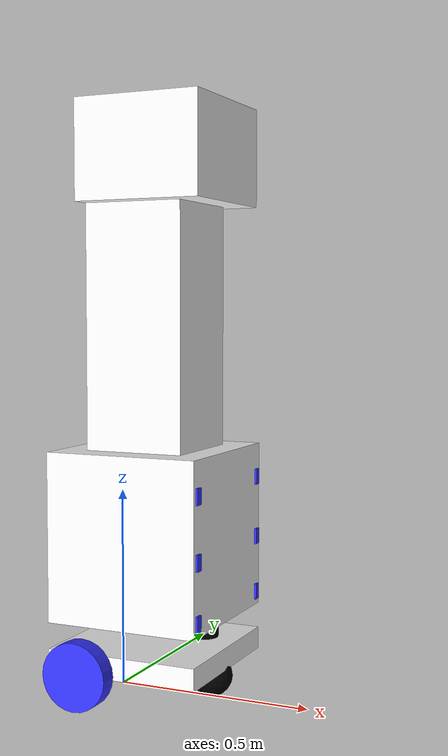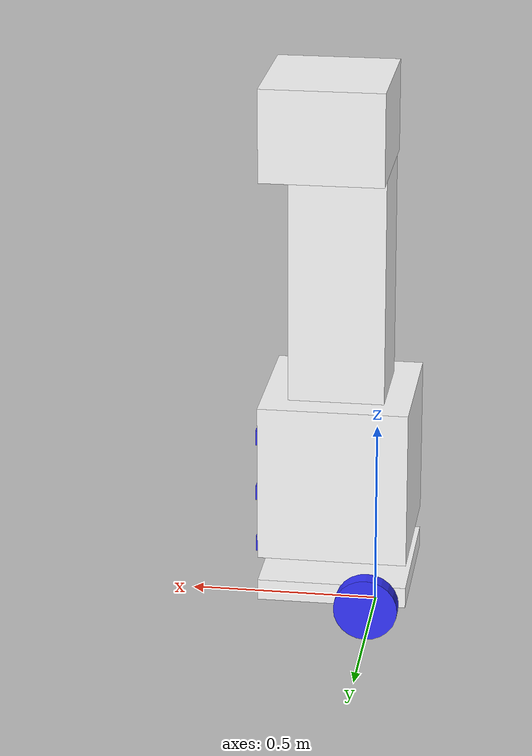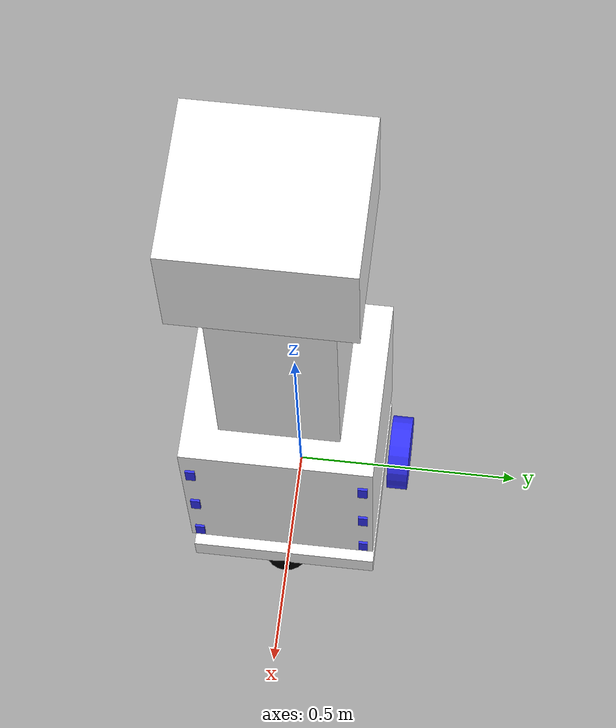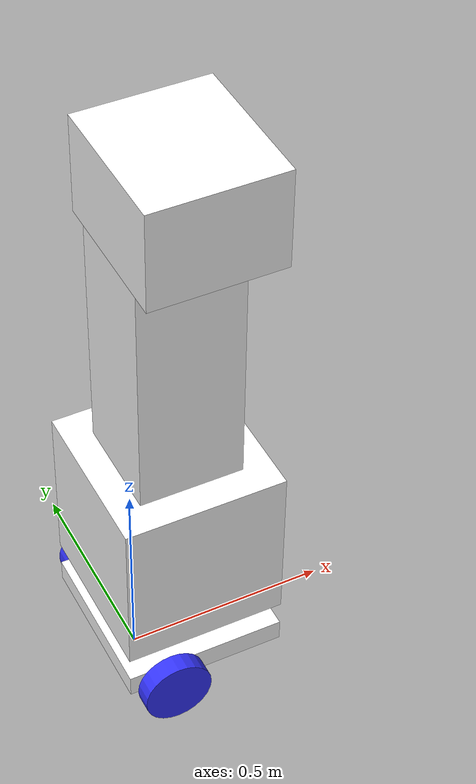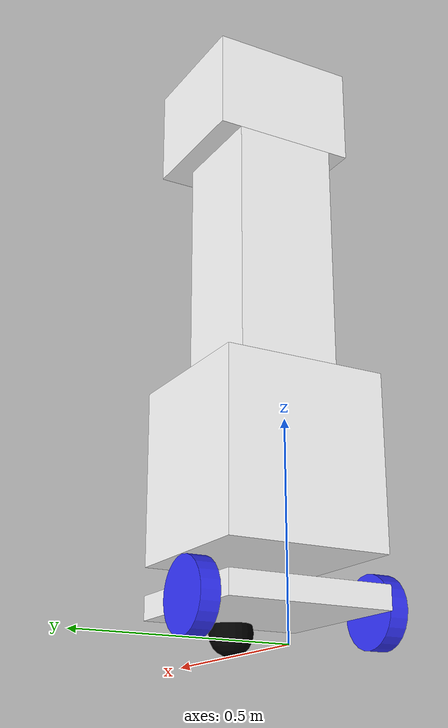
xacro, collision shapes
<?xml version="1.0"?>
<robot xmlns:xacro="http://www.ros.org/wiki/xacro" name="mobile_robot">

    <xacro:arg name="mesh_uri" default="package://objectnav_sim_gazebo/meshes"/>
    <xacro:arg name="publish_odom_tf" default="true"/>
    <xacro:arg name="lidar_samples" default="3200"/>
    <xacro:property name="mesh_uri" value="$(arg mesh_uri)"/>
    <xacro:property name="lidar_samples" value="$(arg lidar_samples)"/>

    <!-- ==================== MATERIALS & MACROS ==================== -->
    <material name="white">
        <color rgba="1 1 1 1"/>
    </material>
    <material name="orange">
        <color rgba="1 0.3 0.1 1"/>
    </material>
    <material name="blue">
        <color rgba="0.2 0.2 1 1"/>
    </material>
    <material name="black">
        <color rgba="0 0 0 1"/>
    </material>

    <xacro:macro name="inertial_box" params="mass x y z *origin">
        <inertial>
            <xacro:insert_block name="origin"/>
            <mass value="${mass}" />
            <inertia ixx="${(1/12) * mass * (y*y+z*z)}" ixy="0.0" ixz="0.0"
                     iyy="${(1/12) * mass * (x*x+z*z)}" iyz="0.0"
                     izz="${(1/12) * mass * (x*x+y*y)}" />
        </inertial>
    </xacro:macro>

    <xacro:macro name="inertial_cylinder" params="mass length radius *origin">
        <inertial>
            <xacro:insert_block name="origin"/>
            <mass value="${mass}" />
            <inertia ixx="${(1/12) * mass * (3*radius*radius + length*length)}" ixy="0.0" ixz="0.0"
                     iyy="${(1/12) * mass * (3*radius*radius + length*length)}" iyz="0.0"
                     izz="${(1/2) * mass * (radius*radius)}" />
        </inertial>
    </xacro:macro>

    <!-- Trụ đặc có trục đối xứng theo y (trục quay của bánh: joint axis = 0 1 0) -> iyy = 1/2 m r^2 -->
    <xacro:macro name="inertial_cylinder_y" params="mass length radius *origin">
        <inertial>
            <xacro:insert_block name="origin"/>
            <mass value="${mass}" />
            <inertia ixx="${(1/12) * mass * (3*radius*radius + length*length)}" ixy="0.0" ixz="0.0"
                     iyy="${(1/2) * mass * (radius*radius)}" iyz="0.0"
                     izz="${(1/12) * mass * (3*radius*radius + length*length)}" />
        </inertial>
    </xacro:macro>

    <xacro:macro name="inertial_sphere" params="mass radius *origin">
        <inertial>
            <xacro:insert_block name="origin"/>
            <mass value="${mass}" />
            <inertia ixx="${(2/5) * mass * (radius*radius)}" ixy="0.0" ixz="0.0"
                     iyy="${(2/5) * mass * (radius*radius)}" iyz="0.0"
                     izz="${(2/5) * mass * (radius*radius)}" />
        </inertial>
    </xacro:macro>

    <!-- ==================== PROPERTIES ==================== -->
    <xacro:property name="chassis_length" value="0.40"/>
    <xacro:property name="chassis_width" value="0.405"/>
    <xacro:property name="chassis_height" value="1.17"/>
    <xacro:property name="chassis_mass" value="25.0"/>

    <xacro:property name="wheel_radius" value="0.084"/>
    <xacro:property name="wheel_width" value="0.046"/>
    <xacro:property name="wheel_mass" value="2.5"/>

    <xacro:property name="wheel_offset_y" value="0.232"/>

    <xacro:property name="caster_radius" value="0.10499"/>
    <xacro:property name="caster_mass" value="0.5"/>

    <!-- ==================== LINKS & JOINTS ==================== -->
    <link name="base_link">
        <inertial>
            <mass value="0.1"/>
            <origin xyz="0 0 0" rpy="0 0 0"/>
            <inertia ixx="0.001" ixy="0.0" ixz="0.0" iyy="0.001" iyz="0.0" izz="0.001"/>
        </inertial>
    </link>

    <link name="base_footprint"/>

    <joint name="base_joint" type="fixed">
        <parent link="base_footprint"/>
        <child link="base_link"/>
        <origin xyz="0 0 ${wheel_radius}" rpy="0 0 0"/>
    </joint>

    <joint name="chassis_joint" type="fixed">
        <parent link="base_link"/>
        <child link="chassis"/>
        <origin xyz="0 0 0" rpy="0 0 0"/>
    </joint>

    <link name="chassis">
        <visual>
            <origin xyz="0 0 0" rpy="0 0 0"/>
            <geometry>
                <mesh filename="${mesh_uri}/Model_v1.stl" scale="0.001 0.001 0.001"/>
            </geometry>
            <material name="white"/>
        </visual>
        <collision name="chassis_base_low">
            <origin xyz="0.096 0 0.017" rpy="0 0 0"/>
            <geometry><box size="0.392 0.402 0.056"/></geometry>
        </collision>
        <collision name="chassis_base_high">
            <origin xyz="0.096 0 0.320" rpy="0 0 0"/>
            <geometry><box size="0.392 0.402 0.420"/></geometry>
        </collision>
        <collision name="chassis_column">
            <origin xyz="0.096 0 0.830" rpy="0 0 0"/>
            <geometry><box size="0.252 0.252 0.600"/></geometry>
        </collision>
        <collision name="chassis_head">
            <origin xyz="0.1305 0 1.2515" rpy="0 0 0"/>
            <geometry><box size="0.321 0.356 0.243"/></geometry>
        </collision>
        <xacro:inertial_box mass="${chassis_mass}" x="${chassis_length}" y="${chassis_width}" z="${chassis_height}">
            <origin xyz="0.15 0 0.3" rpy="0 0 0"/>
        </xacro:inertial_box>
    </link>

    <joint name="left_wheel_joint" type="continuous">
        <parent link="base_link"/>
        <child link="left_wheel"/>
        <origin xyz="0 ${wheel_offset_y} 0" rpy="0 0 0"/>
        <axis xyz="0 1 0"/>
    </joint>

    <link name="left_wheel">
        <visual>
            <origin xyz="0 0 0" rpy="0 0 0"/>
            <geometry>
                <mesh filename="${mesh_uri}/hoverboard_motor_assembly.stl" scale="0.001 0.001 0.001"/>
            </geometry>
            <material name="blue"/>
        </visual>
        <!-- Collision: trụ bán kính wheel_radius, trục theo y (lốp nằm ở y∈[-0.02,0.02] của mesh) -->
        <collision>
            <origin xyz="0 0 0" rpy="${pi/2} 0 0"/>
            <geometry>
                <cylinder radius="${wheel_radius}" length="${wheel_width}"/>
            </geometry>
        </collision>
        <xacro:inertial_cylinder_y mass="${wheel_mass}" length="${wheel_width}" radius="${wheel_radius}">
            <origin xyz="0 0 0" rpy="0 0 0"/>
        </xacro:inertial_cylinder_y>
    </link>

    <joint name="right_wheel_joint" type="continuous">
        <parent link="base_link"/>
        <child link="right_wheel"/>
        <origin xyz="0 -${wheel_offset_y} 0" rpy="0 0 3.14159"/>
        <axis xyz="0 -1 0"/>
    </joint>

    <link name="right_wheel">
        <visual>
            <origin xyz="0 0 0" rpy="0 0 0"/>
            <geometry>
                <mesh filename="${mesh_uri}/hoverboard_motor_assembly.stl" scale="0.001 0.001 0.001"/>
            </geometry>
            <material name="blue"/>
        </visual>
        <!-- Collision: trụ bán kính wheel_radius, trục theo y (lốp nằm ở y∈[-0.02,0.02] của mesh) -->
        <collision>
            <origin xyz="0 0 0" rpy="${pi/2} 0 0"/>
            <geometry>
                <cylinder radius="${wheel_radius}" length="${wheel_width}"/>
            </geometry>
        </collision>
        <xacro:inertial_cylinder_y mass="${wheel_mass}" length="${wheel_width}" radius="${wheel_radius}">
            <origin xyz="0 0 0" rpy="0 0 0"/>
        </xacro:inertial_cylinder_y>
    </link>

    <joint name="caster_wheel_joint" type="fixed">
        <parent link="chassis"/>
        <child link="caster_wheel"/>
        <origin xyz="0.248 0 ${caster_radius - wheel_radius}" rpy="0 0 0"/>
    </joint>

    <link name="caster_wheel">
        <visual>
            <origin xyz="0 0 0" rpy="0 0 0"/>
            <geometry>
                <mesh filename="${mesh_uri}/caster_wheel.stl" scale="0.01 0.01 0.01"/>
            </geometry>
            <material name="black"/>
        </visual>
        <collision>
            <origin xyz="0 0 ${-(caster_radius/2)}" rpy="0 0 0"/>
            <geometry>
                <sphere radius="${caster_radius/2}"/>
            </geometry>
        </collision>
        <xacro:inertial_sphere mass="${caster_mass}" radius="${caster_radius}">
            <origin xyz="0 0 0" rpy="0 0 0"/>
        </xacro:inertial_sphere>
    </link>

    <joint name="laser_joint" type="fixed">
        <parent link="chassis"/>
        <child link="laser_frame"/>
        <origin xyz="0.225 0 0.085" rpy="0 0 3.14159"/>
    </joint>

    <link name="laser_frame">
        <visual>
            <origin xyz="0 0 0" rpy="0 0 3.14159"/>
            <geometry>
                <mesh filename="${mesh_uri}/RPLiDAR_s2.stl" scale="0.001 0.001 0.001"/>
            </geometry>
            <material name="black"/>
        </visual>
        <collision>
            <origin xyz="0 0 0" rpy="0 0 3.14159"/>
            <geometry>
                <cylinder length="0.04" radius="0.038"/>
            </geometry>
        </collision>
        <xacro:inertial_cylinder mass="0.1" length="0.04" radius="0.038">
            <origin xyz="0 0 0" rpy="0 0 0"/>
        </xacro:inertial_cylinder>
    </link>

    <joint name="imu_joint" type="fixed">
        <parent link="chassis"/>
        <child link="imu_link"/>
        <origin xyz="0 0 ${chassis_height/4 - 0.04}" rpy="0 0 0"/>
    </joint>

    <link name="imu_link">
        <visual>
            <geometry>
                <box size="0.02 0.02 0.01"/>
            </geometry>
            <material name="blue"/> </visual>

        <collision>
            <geometry>
                <box size="0.02 0.02 0.01"/>
            </geometry>
        </collision>

        <xacro:inertial_box mass="0.01" x="0.02" y="0.02" z="0.01">
            <origin xyz="0 0 0" rpy="0 0 0"/>
        </xacro:inertial_box>
    </link>

    <xacro:macro name="ultrasonic_link" params="name">
        <link name="${name}_link">
            <visual>
                <geometry><box size="0.015 0.02 0.04"/></geometry>
                <material name="blue"/>
            </visual>
            <collision>
                <geometry><box size="0.015 0.02 0.04"/></geometry>
            </collision>
            <xacro:inertial_box mass="0.01" x="0.015" y="0.02" z="0.04">
                <origin xyz="0 0 0" rpy="0 0 0"/>
            </xacro:inertial_box>
        </link>
        <gazebo reference="${name}_link"><material>Gazebo/Blue</material></gazebo>
    </xacro:macro>

    <!-- TOP -->
    <joint name="us_top_left_joint" type="fixed">
        <parent link="chassis"/>
        <child link="us_top_left_link"/>
        <origin xyz="0.29 0.18 0.445" rpy="0 0 0"/>
    </joint>
    <xacro:ultrasonic_link name="us_top_left"/>

    <joint name="us_top_right_joint" type="fixed">
        <parent link="chassis"/>
        <child link="us_top_right_link"/>
        <origin xyz="0.29 -0.18 0.445" rpy="0 0 0"/>
    </joint>
    <xacro:ultrasonic_link name="us_top_right"/>

    <!-- MID-TOP -->
    <joint name="us_mid_top_left_joint" type="fixed">
        <parent link="chassis"/>
        <child link="us_mid_top_left_link"/>
        <origin xyz="0.29 0.18 0.29" rpy="0 0 0"/>
    </joint>
    <xacro:ultrasonic_link name="us_mid_top_left"/>

    <joint name="us_mid_top_right_joint" type="fixed">
        <parent link="chassis"/>
        <child link="us_mid_top_right_link"/>
        <origin xyz="0.29 -0.18 0.29" rpy="0 0 0"/>
    </joint>
    <xacro:ultrasonic_link name="us_mid_top_right"/>

    <!-- MID-BOT -->
    <joint name="us_mid_bot_left_joint" type="fixed">
        <parent link="chassis"/>
        <child link="us_mid_bot_left_link"/>
        <origin xyz="0.29 0.18 0.145" rpy="0 0 0"/>
    </joint>
    <xacro:ultrasonic_link name="us_mid_bot_left"/>

    <joint name="us_mid_bot_right_joint" type="fixed">
        <parent link="chassis"/>
        <child link="us_mid_bot_right_link"/>
        <origin xyz="0.29 -0.18 0.145" rpy="0 0 0"/>
    </joint>
    <xacro:ultrasonic_link name="us_mid_bot_right"/>

    <!-- ==================== GAZEBO ==================== -->
    <gazebo reference="chassis"><material>Gazebo/White</material></gazebo>
    <gazebo reference="left_wheel"><material>Gazebo/Blue</material></gazebo>
    <gazebo reference="right_wheel"><material>Gazebo/Blue</material></gazebo>
    <gazebo reference="laser_frame"><material>Gazebo/Black</material></gazebo>
    <gazebo reference="imu_link"><material>Gazebo/Blue</material></gazebo>
    <!-- Bánh caster gắn cứng (fixed joint) -> ma sát 0 để nó trượt thay vì lăn -->
    <gazebo reference="caster_wheel">
        <material>Gazebo/Black</material>
        <mu1>0.0</mu1>
        <mu2>0.0</mu2>
    </gazebo>

    <gazebo reference="laser_frame">
        <sensor name="rplidar_s2" type="ray">
            <always_on>true</always_on>
            <visualize>false</visualize>
            <update_rate>10</update_rate>
            <ray>
                <scan>
                    <horizontal>
                        <samples>${lidar_samples}</samples>
                        <resolution>1</resolution>
                        <min_angle>${-pi}</min_angle>
                        <max_angle>${pi - 2*pi/float(lidar_samples)}</max_angle>
                    </horizontal>
                </scan>
                <range>
                    <min>0.05</min>
                    <max>30.0</max>
                    <resolution>0.013</resolution>
                </range>
                <noise>
                    <type>gaussian</type>
                    <mean>0.0</mean>
                    <stddev>0.01</stddev>
                </noise>
            </ray>
            <plugin name="rplidar_s2_plugin" filename="libgazebo_ros_ray_sensor.so">
                <ros><remapping>~/out:=scan</remapping></ros>
                <output_type>sensor_msgs/LaserScan</output_type>
                <frame_name>laser_frame</frame_name>
            </plugin>
        </sensor>
    </gazebo>

    <xacro:macro name="ultrasonic_sensor" params="link topic">
        <gazebo reference="${link}_link">
            <sensor name="${link}_sensor" type="ray">
                <always_on>true</always_on>
                <visualize>true</visualize>
                <update_rate>10</update_rate>
                <ray>
                    <scan>
                        <horizontal>
                            <samples>5</samples>
                            <resolution>1</resolution>
                            <min_angle>-0.13</min_angle>
                            <max_angle>0.13</max_angle>
                        </horizontal>
                        <vertical>
                            <samples>5</samples>
                            <resolution>1</resolution>
                            <min_angle>-0.13</min_angle>
                            <max_angle>0.13</max_angle>
                        </vertical>
                    </scan>
                    <range>
                        <min>0.02</min>
                        <max>2.5</max>
                        <resolution>0.01</resolution>
                    </range>
                </ray>
                <plugin name="${link}_plugin" filename="libgazebo_ros_ray_sensor.so">
                    <ros><remapping>~/out:=ultrasonic/${topic}</remapping></ros>
                    <output_type>sensor_msgs/Range</output_type>
                    <radiation_type>ultrasound</radiation_type>
                    <frame_name>${link}_link</frame_name>
                </plugin>
            </sensor>
        </gazebo>
    </xacro:macro>

    <xacro:ultrasonic_sensor link="us_top_left"      topic="us_top_left"/>
    <xacro:ultrasonic_sensor link="us_top_right"     topic="us_top_right"/>
    <xacro:ultrasonic_sensor link="us_mid_top_left"  topic="us_mid_left"/>
    <xacro:ultrasonic_sensor link="us_mid_top_right" topic="us_mid_right"/>
    <xacro:ultrasonic_sensor link="us_mid_bot_left"  topic="us_bot_left"/>
    <xacro:ultrasonic_sensor link="us_mid_bot_right" topic="us_bot_right"/>

    <!-- IMU: BNO055 trên robot thật publish /imu/data, frame imu_link, 100 Hz. IMU mô phỏng lý tưởng (không nhiễu). -->
    <gazebo reference="imu_link">
        <sensor name="bno055" type="imu">
            <always_on>true</always_on>
            <update_rate>100</update_rate>
            <plugin name="bno055_plugin" filename="libgazebo_ros_imu_sensor.so">
                <ros><remapping>~/out:=imu/data</remapping></ros>
                <frame_name>imu_link</frame_name>
                <initial_orientation_as_reference>false</initial_orientation_as_reference>
            </plugin>
        </sensor>
    </gazebo>

    <gazebo>
        <plugin name="diff_drive" filename="libgazebo_ros_diff_drive.so">
            <update_rate>100</update_rate>
            <left_joint>left_wheel_joint</left_joint>
            <right_joint>right_wheel_joint</right_joint>
            <wheel_separation>${2*wheel_offset_y}</wheel_separation>
            <wheel_diameter>${2*wheel_radius}</wheel_diameter>
            <max_wheel_torque>20</max_wheel_torque>
            <max_wheel_acceleration>1.5</max_wheel_acceleration>
            <publish_odom>true</publish_odom>
            <publish_odom_tf>$(arg publish_odom_tf)</publish_odom_tf>
            <publish_wheel_tf>false</publish_wheel_tf>
            <odometry_frame>odom</odometry_frame>
            <robot_base_frame>base_footprint</robot_base_frame>
            <odometry_source>0</odometry_source>
        </plugin>

        <!-- /joint_states của 2 bánh -> robot_state_publisher phát TF base_link->left/right_wheel -->
        <plugin name="joint_states" filename="libgazebo_ros_joint_state_publisher.so">
            <update_rate>50</update_rate>
            <joint_name>left_wheel_joint</joint_name>
            <joint_name>right_wheel_joint</joint_name>
        </plugin>
    </gazebo>

</robot>
